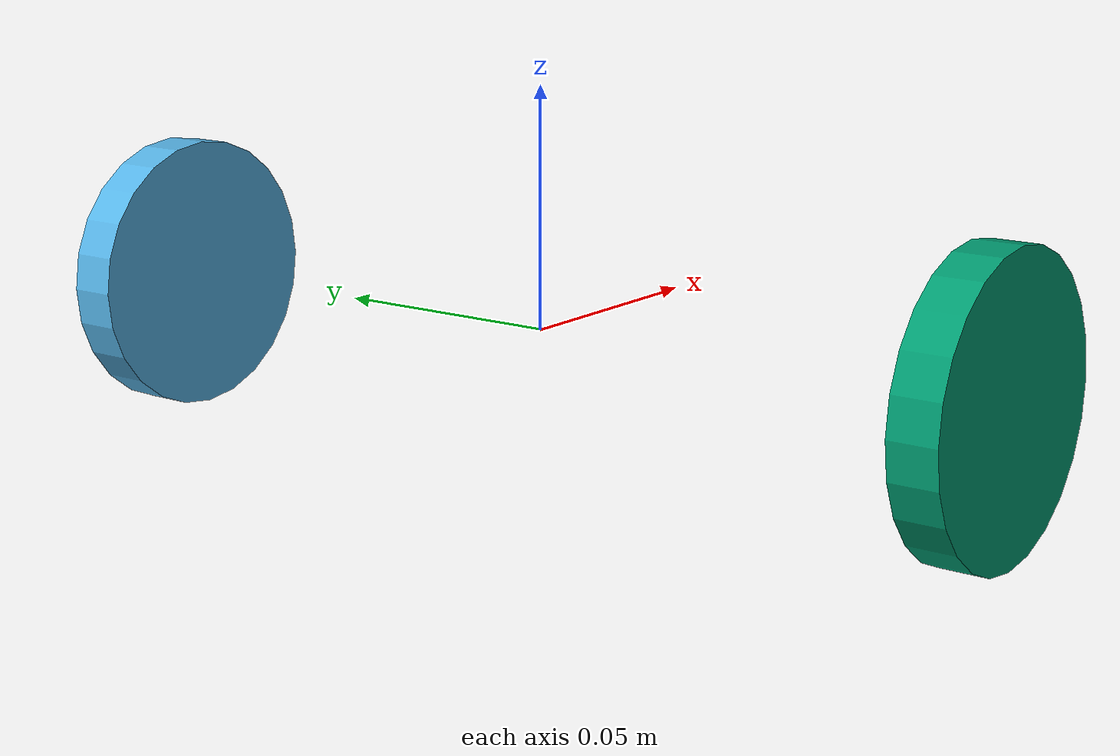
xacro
<?xml version="1.0"?>
<robot xmlns:xacro="http://www.ros.org/wiki/xacro" name="esp32_motor">

  <!-- UART on the Jetson 40-pin header (pins 8 TX / 10 RX). Override with device:=... -->
  <xacro:arg name="device" default="/dev/ttyTHS1"/>
  <xacro:arg name="baud_rate" default="115200"/>

  <xacro:macro name="motor" params="name y">
    <link name="${name}_link">
      <visual>
        <geometry>
          <cylinder radius="0.03" length="0.01"/>
        </geometry>
      </visual>
    </link>

    <joint name="${name}_joint" type="continuous">
      <parent link="base_link"/>
      <child link="${name}_link"/>
      <origin xyz="0 ${y} 0" rpy="-1.5708 0 0"/>
      <axis xyz="0 0 1"/>
    </joint>
  </xacro:macro>

  <link name="base_link"/>

  <xacro:motor name="motor_1" y="0.1"/>
  <xacro:motor name="motor_2" y="-0.1"/>

  <ros2_control name="Esp32Motor" type="system">
    <hardware>
      <plugin>esp32_motor_hardware_interface/Esp32System</plugin>
      <param name="device">$(arg device)</param>
      <param name="baud_rate">$(arg baud_rate)</param>
      <param name="timeout_ms">20</param>
      <param name="max_missed_replies">5</param>
      <!-- PID gains sent to the ESP32 at startup. Tune live with rqt_reconfigure
           (node esp32_motor_pid), then copy the values you like here. -->
      <param name="kp">0.04</param>
      <param name="ki">0.10</param>
      <param name="kd">0.0</param>
    </hardware>
    <!-- Order here = order in the serial protocol (motor 1 = L298N channel A) -->
    <joint name="motor_1_joint">
      <command_interface name="velocity"/>
      <state_interface name="position"/>
      <state_interface name="velocity"/>
    </joint>
    <joint name="motor_2_joint">
      <command_interface name="velocity"/>
      <state_interface name="position"/>
      <state_interface name="velocity"/>
    </joint>
  </ros2_control>

</robot>
